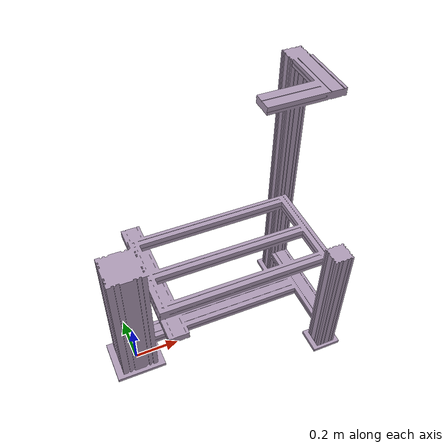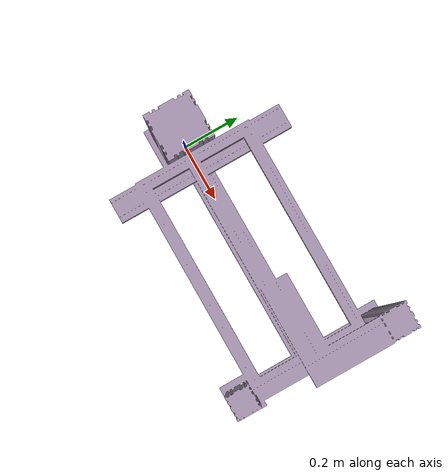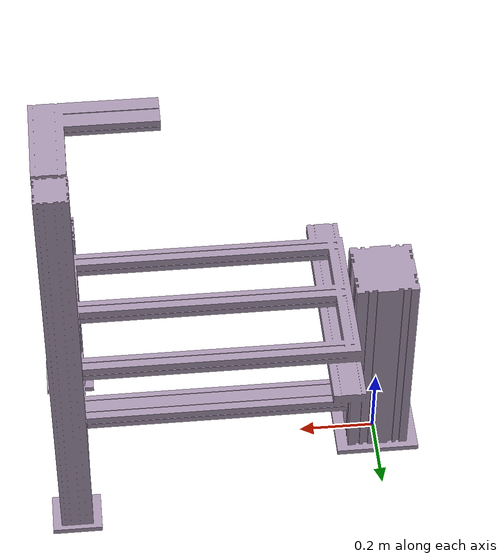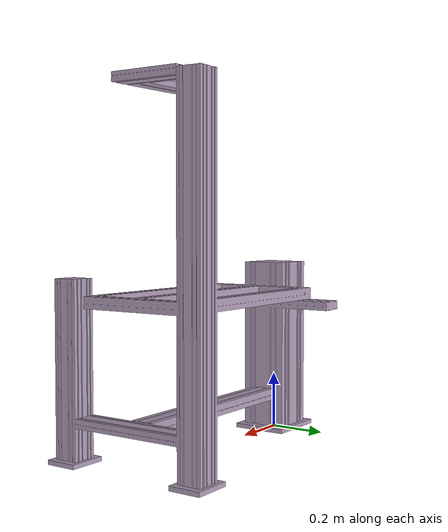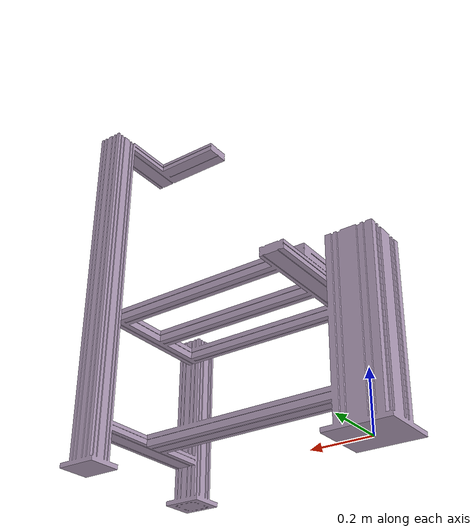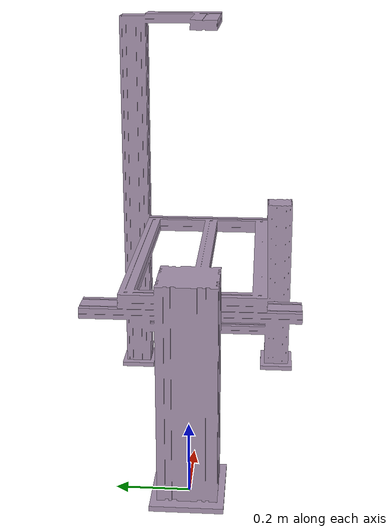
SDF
<?xml version="1.0" ?>
<sdf version="1.6">
  <model name="stand">
    <static>true</static>
    <link name="link">
      <visual name="visual">
        <geometry>
          <mesh>
            <uri>model://stand/meshes/binPickingStand_scaled.dae</uri>
          </mesh>
        </geometry>
      </visual>
    </link>
  </model>
</sdf>
